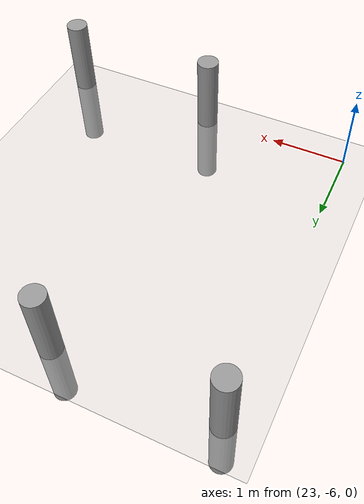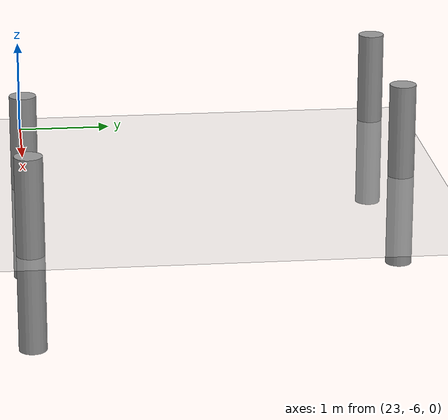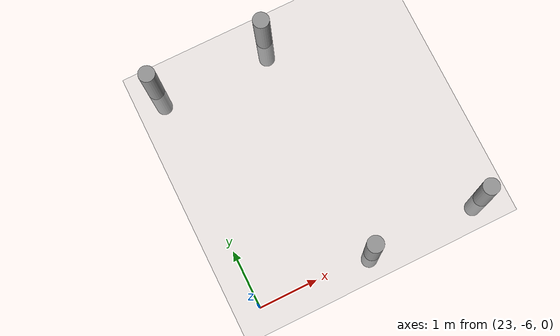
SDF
<sdf version="1.6">
 <world name="default">
  <model name="ground_plane">
   <static>1</static>
   <link name="link">
    <collision name="collision">
     <geometry><plane><normal>0 0 1</normal><size>100 100</size></plane></geometry>
     <surface><friction><ode><mu>100</mu><mu2>50</mu2></ode></friction></surface>
    </collision>
    <visual name="visual">
     <cast_shadows>0</cast_shadows>
     <geometry><plane><normal>0 0 1</normal><size>100 100</size></plane></geometry>
     <material>
      <script><uri>file://media/materials/scripts/gazebo.material</uri><name>Gazebo/Grey</name></script>
     </material>
    </visual>
   </link>
  </model>
  <model name="my_cylinder014_clone_10_0">
   <pose>25 -2 0 0 -0 0</pose>
   <link name="my_cylinder014::link">
    <inertial>
     <mass>1</mass>
     <inertia><ixx>0.145833</ixx><ixy>0</ixy><ixz>0</ixz><iyy>0.145833</iyy><iyz>0</iyz><izz>0.125</izz></inertia>
    </inertial>
    <visual name="visual">
     <geometry><cylinder><radius>0.14</radius><length>2</length></cylinder></geometry>
     <material>
      <script><name>Gazebo/Grey</name><uri>file://media/materials/scripts/gazebo.material</uri></script>
      <ambient>0.3 0.3 0.3 1</ambient>
      <diffuse>0.7 0.7 0.7 1</diffuse>
      <specular>1 0.01 0.01 1</specular>
      <emissive>0 0 0 1</emissive>
      <shader type="vertex"><normal_map>__default__</normal_map></shader>
     </material>
    </visual>
    <collision name="collision">
     <geometry><cylinder><radius>0.14</radius><length>2</length></cylinder></geometry>
     <surface>
      <friction>
       <ode><mu>1</mu><mu2>1</mu2><fdir1>0 0 0</fdir1><slip1>0</slip1><slip2>0</slip2></ode>
       <torsional>
        <coefficient>1</coefficient>
        <patch_radius>0</patch_radius>
        <surface_radius>0</surface_radius>
        <use_patch_radius>1</use_patch_radius>
        <ode><slip>0</slip></ode>
       </torsional>
      </friction>
      <bounce><restitution_coefficient>0</restitution_coefficient><threshold>1e+06</threshold></bounce>
      <contact>
       <collide_without_contact>0</collide_without_contact>
       <collide_without_contact_bitmask>1</collide_without_contact_bitmask>
       <collide_bitmask>1</collide_bitmask>
       <ode>
        <soft_cfm>0</soft_cfm>
        <soft_erp>0.2</soft_erp>
        <kp>1e+13</kp>
        <kd>1</kd>
        <max_vel>0.01</max_vel>
        <min_depth>0</min_depth>
       </ode>
       <bullet>
        <split_impulse>1</split_impulse>
        <split_impulse_penetration_threshold>-0.01</split_impulse_penetration_threshold>
        <soft_cfm>0</soft_cfm>
        <soft_erp>0.2</soft_erp>
        <kp>1e+13</kp>
        <kd>1</kd>
       </bullet>
      </contact>
     </surface>
    </collision>
   </link>
   <static>1</static>
  </model>
  <model name="my_cylinder014_clone_10_0">
   <pose>25 -2 0 0 -0 0</pose>
   <link name="my_cylinder014::link">
    <inertial>
     <mass>1</mass>
     <inertia><ixx>0.145833</ixx><ixy>0</ixy><ixz>0</ixz><iyy>0.145833</iyy><iyz>0</iyz><izz>0.125</izz></inertia>
    </inertial>
    <visual name="visual">
     <geometry><cylinder><radius>0.14</radius><length>2</length></cylinder></geometry>
     <material>
      <script><name>Gazebo/Grey</name><uri>file://media/materials/scripts/gazebo.material</uri></script>
      <ambient>0.3 0.3 0.3 1</ambient>
      <diffuse>0.7 0.7 0.7 1</diffuse>
      <specular>1 0.01 0.01 1</specular>
      <emissive>0 0 0 1</emissive>
      <shader type="vertex"><normal_map>__default__</normal_map></shader>
     </material>
    </visual>
    <collision name="collision">
     <geometry><cylinder><radius>0.14</radius><length>2</length></cylinder></geometry>
     <surface>
      <friction>
       <ode><mu>1</mu><mu2>1</mu2><fdir1>0 0 0</fdir1><slip1>0</slip1><slip2>0</slip2></ode>
       <torsional>
        <coefficient>1</coefficient>
        <patch_radius>0</patch_radius>
        <surface_radius>0</surface_radius>
        <use_patch_radius>1</use_patch_radius>
        <ode><slip>0</slip></ode>
       </torsional>
      </friction>
      <bounce><restitution_coefficient>0</restitution_coefficient><threshold>1e+06</threshold></bounce>
      <contact>
       <collide_without_contact>0</collide_without_contact>
       <collide_without_contact_bitmask>1</collide_without_contact_bitmask>
       <collide_bitmask>1</collide_bitmask>
       <ode>
        <soft_cfm>0</soft_cfm>
        <soft_erp>0.2</soft_erp>
        <kp>1e+13</kp>
        <kd>1</kd>
        <max_vel>0.01</max_vel>
        <min_depth>0</min_depth>
       </ode>
       <bullet>
        <split_impulse>1</split_impulse>
        <split_impulse_penetration_threshold>-0.01</split_impulse_penetration_threshold>
        <soft_cfm>0</soft_cfm>
        <soft_erp>0.2</soft_erp>
        <kp>1e+13</kp>
        <kd>1</kd>
       </bullet>
      </contact>
     </surface>
    </collision>
   </link>
   <static>1</static>
  </model>
  <model name="my_cylinder014_clone_8_0">
   <pose>27 -6 0 0 -0 0</pose>
   <link name="my_cylinder014::link">
    <inertial>
     <mass>1</mass>
     <inertia><ixx>0.145833</ixx><ixy>0</ixy><ixz>0</ixz><iyy>0.145833</iyy><iyz>0</iyz><izz>0.125</izz></inertia>
    </inertial>
    <visual name="visual">
     <geometry><cylinder><radius>0.14</radius><length>2</length></cylinder></geometry>
     <material>
      <script><name>Gazebo/Grey</name><uri>file://media/materials/scripts/gazebo.material</uri></script>
      <ambient>0.3 0.3 0.3 1</ambient>
      <diffuse>0.7 0.7 0.7 1</diffuse>
      <specular>1 0.01 0.01 1</specular>
      <emissive>0 0 0 1</emissive>
      <shader type="vertex"><normal_map>__default__</normal_map></shader>
     </material>
    </visual>
    <collision name="collision">
     <geometry><cylinder><radius>0.14</radius><length>2</length></cylinder></geometry>
     <surface>
      <friction>
       <ode><mu>1</mu><mu2>1</mu2><fdir1>0 0 0</fdir1><slip1>0</slip1><slip2>0</slip2></ode>
       <torsional>
        <coefficient>1</coefficient>
        <patch_radius>0</patch_radius>
        <surface_radius>0</surface_radius>
        <use_patch_radius>1</use_patch_radius>
        <ode><slip>0</slip></ode>
       </torsional>
      </friction>
      <bounce><restitution_coefficient>0</restitution_coefficient><threshold>1e+06</threshold></bounce>
      <contact>
       <collide_without_contact>0</collide_without_contact>
       <collide_without_contact_bitmask>1</collide_without_contact_bitmask>
       <collide_bitmask>1</collide_bitmask>
       <ode>
        <soft_cfm>0</soft_cfm>
        <soft_erp>0.2</soft_erp>
        <kp>1e+13</kp>
        <kd>1</kd>
        <max_vel>0.01</max_vel>
        <min_depth>0</min_depth>
       </ode>
       <bullet>
        <split_impulse>1</split_impulse>
        <split_impulse_penetration_threshold>-0.01</split_impulse_penetration_threshold>
        <soft_cfm>0</soft_cfm>
        <soft_erp>0.2</soft_erp>
        <kp>1e+13</kp>
        <kd>1</kd>
       </bullet>
      </contact>
     </surface>
    </collision>
   </link>
   <static>1</static>
  </model>
  <model name="my_cylinder014_clone_9_1">
   <pose>23 -2 0 0 -0 0</pose>
   <link name="my_cylinder014::link">
    <inertial>
     <mass>1</mass>
     <inertia><ixx>0.145833</ixx><ixy>0</ixy><ixz>0</ixz><iyy>0.145833</iyy><iyz>0</iyz><izz>0.125</izz></inertia>
    </inertial>
    <visual name="visual">
     <geometry><cylinder><radius>0.14</radius><length>2</length></cylinder></geometry>
     <material>
      <script><name>Gazebo/Grey</name><uri>file://media/materials/scripts/gazebo.material</uri></script>
      <ambient>0.3 0.3 0.3 1</ambient>
      <diffuse>0.7 0.7 0.7 1</diffuse>
      <specular>1 0.01 0.01 1</specular>
      <emissive>0 0 0 1</emissive>
      <shader type="vertex"><normal_map>__default__</normal_map></shader>
     </material>
    </visual>
    <collision name="collision">
     <geometry><cylinder><radius>0.14</radius><length>2</length></cylinder></geometry>
     <surface>
      <friction>
       <ode><mu>1</mu><mu2>1</mu2><fdir1>0 0 0</fdir1><slip1>0</slip1><slip2>0</slip2></ode>
       <torsional>
        <coefficient>1</coefficient>
        <patch_radius>0</patch_radius>
        <surface_radius>0</surface_radius>
        <use_patch_radius>1</use_patch_radius>
        <ode><slip>0</slip></ode>
       </torsional>
      </friction>
      <bounce><restitution_coefficient>0</restitution_coefficient><threshold>1e+06</threshold></bounce>
      <contact>
       <collide_without_contact>0</collide_without_contact>
       <collide_without_contact_bitmask>1</collide_without_contact_bitmask>
       <collide_bitmask>1</collide_bitmask>
       <ode>
        <soft_cfm>0</soft_cfm>
        <soft_erp>0.2</soft_erp>
        <kp>1e+13</kp>
        <kd>1</kd>
        <max_vel>0.01</max_vel>
        <min_depth>0</min_depth>
       </ode>
       <bullet>
        <split_impulse>1</split_impulse>
        <split_impulse_penetration_threshold>-0.01</split_impulse_penetration_threshold>
        <soft_cfm>0</soft_cfm>
        <soft_erp>0.2</soft_erp>
        <kp>1e+13</kp>
        <kd>1</kd>
       </bullet>
      </contact>
     </surface>
    </collision>
   </link>
   <static>1</static>
  </model>
  <model name="my_cylinder014_clone_9_1">
   <pose>23 -2 0 0 -0 0</pose>
   <link name="my_cylinder014::link">
    <inertial>
     <mass>1</mass>
     <inertia><ixx>0.145833</ixx><ixy>0</ixy><ixz>0</ixz><iyy>0.145833</iyy><iyz>0</iyz><izz>0.125</izz></inertia>
    </inertial>
    <visual name="visual">
     <geometry><cylinder><radius>0.14</radius><length>2</length></cylinder></geometry>
     <material>
      <script><name>Gazebo/Grey</name><uri>file://media/materials/scripts/gazebo.material</uri></script>
      <ambient>0.3 0.3 0.3 1</ambient>
      <diffuse>0.7 0.7 0.7 1</diffuse>
      <specular>1 0.01 0.01 1</specular>
      <emissive>0 0 0 1</emissive>
      <shader type="vertex"><normal_map>__default__</normal_map></shader>
     </material>
    </visual>
    <collision name="collision">
     <geometry><cylinder><radius>0.14</radius><length>2</length></cylinder></geometry>
     <surface>
      <friction>
       <ode><mu>1</mu><mu2>1</mu2><fdir1>0 0 0</fdir1><slip1>0</slip1><slip2>0</slip2></ode>
       <torsional>
        <coefficient>1</coefficient>
        <patch_radius>0</patch_radius>
        <surface_radius>0</surface_radius>
        <use_patch_radius>1</use_patch_radius>
        <ode><slip>0</slip></ode>
       </torsional>
      </friction>
      <bounce><restitution_coefficient>0</restitution_coefficient><threshold>1e+06</threshold></bounce>
      <contact>
       <collide_without_contact>0</collide_without_contact>
       <collide_without_contact_bitmask>1</collide_without_contact_bitmask>
       <collide_bitmask>1</collide_bitmask>
       <ode>
        <soft_cfm>0</soft_cfm>
        <soft_erp>0.2</soft_erp>
        <kp>1e+13</kp>
        <kd>1</kd>
        <max_vel>0.01</max_vel>
        <min_depth>0</min_depth>
       </ode>
       <bullet>
        <split_impulse>1</split_impulse>
        <split_impulse_penetration_threshold>-0.01</split_impulse_penetration_threshold>
        <soft_cfm>0</soft_cfm>
        <soft_erp>0.2</soft_erp>
        <kp>1e+13</kp>
        <kd>1</kd>
       </bullet>
      </contact>
     </surface>
    </collision>
   </link>
   <static>1</static>
  </model>
  <model name="my_cylinder014_clone_7_1">
   <pose>25 -6 0 0 -0 0</pose>
   <link name="my_cylinder014::link">
    <inertial>
     <mass>1</mass>
     <inertia><ixx>0.145833</ixx><ixy>0</ixy><ixz>0</ixz><iyy>0.145833</iyy><iyz>0</iyz><izz>0.125</izz></inertia>
    </inertial>
    <visual name="visual">
     <geometry><cylinder><radius>0.14</radius><length>2</length></cylinder></geometry>
     <material>
      <script><name>Gazebo/Grey</name><uri>file://media/materials/scripts/gazebo.material</uri></script>
      <ambient>0.3 0.3 0.3 1</ambient>
      <diffuse>0.7 0.7 0.7 1</diffuse>
      <specular>1 0.01 0.01 1</specular>
      <emissive>0 0 0 1</emissive>
      <shader type="vertex"><normal_map>__default__</normal_map></shader>
     </material>
    </visual>
    <collision name="collision">
     <geometry><cylinder><radius>0.14</radius><length>2</length></cylinder></geometry>
     <surface>
      <friction>
       <ode><mu>1</mu><mu2>1</mu2><fdir1>0 0 0</fdir1><slip1>0</slip1><slip2>0</slip2></ode>
       <torsional>
        <coefficient>1</coefficient>
        <patch_radius>0</patch_radius>
        <surface_radius>0</surface_radius>
        <use_patch_radius>1</use_patch_radius>
        <ode><slip>0</slip></ode>
       </torsional>
      </friction>
      <bounce><restitution_coefficient>0</restitution_coefficient><threshold>1e+06</threshold></bounce>
      <contact>
       <collide_without_contact>0</collide_without_contact>
       <collide_without_contact_bitmask>1</collide_without_contact_bitmask>
       <collide_bitmask>1</collide_bitmask>
       <ode>
        <soft_cfm>0</soft_cfm>
        <soft_erp>0.2</soft_erp>
        <kp>1e+13</kp>
        <kd>1</kd>
        <max_vel>0.01</max_vel>
        <min_depth>0</min_depth>
       </ode>
       <bullet>
        <split_impulse>1</split_impulse>
        <split_impulse_penetration_threshold>-0.01</split_impulse_penetration_threshold>
        <soft_cfm>0</soft_cfm>
        <soft_erp>0.2</soft_erp>
        <kp>1e+13</kp>
        <kd>1</kd>
       </bullet>
      </contact>
     </surface>
    </collision>
   </link>
   <static>1</static>
  </model>
 </world>
</sdf>
